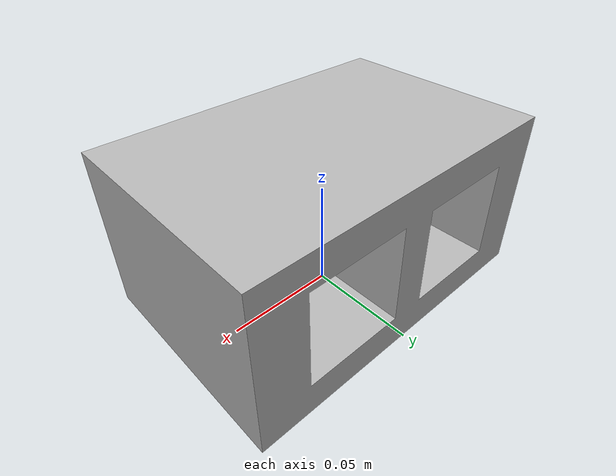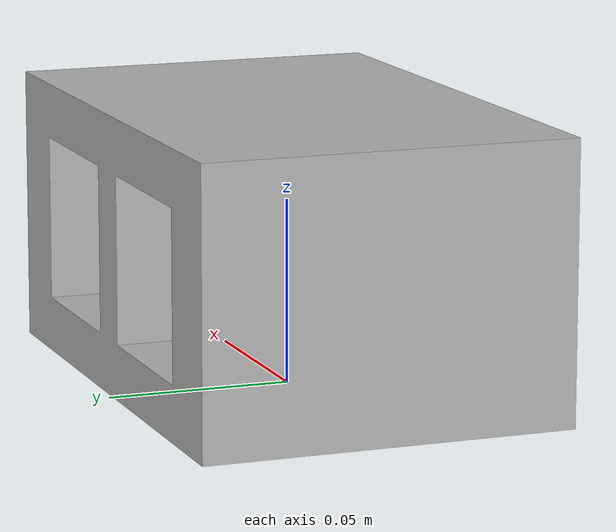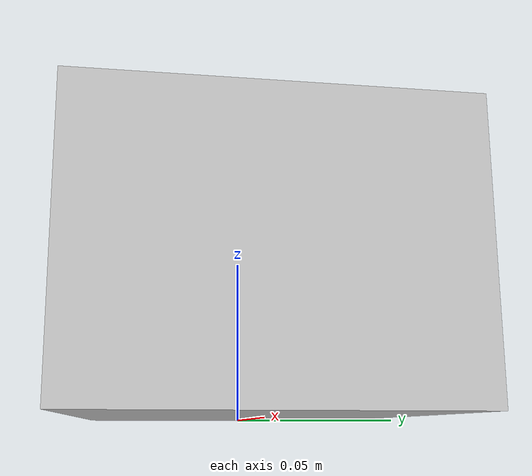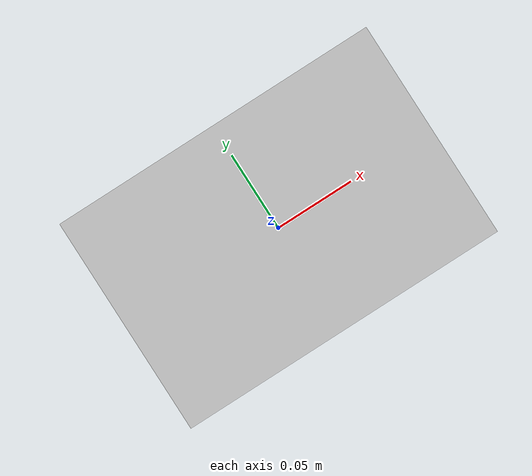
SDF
<?xml version="1.0" ?>
<sdf version="1.4">
  <model name="maskor_ev3_crate3">
    <pose>0 0 0 0 0 0</pose>
    <static>false</static>
    <link name="link">
      <pose>0 0 0.001 0 0 0</pose>
       <inertial>
          <inertia>
            <ixx>1</ixx>
            <ixy>0</ixy>
            <ixz>0</ixz>
            <iyy>1</iyy>
            <iyz>0</iyz>
            <izz>1</izz>
          </inertia>
          <mass>0.02</mass>
        </inertial>
       <visual name="visual">
       <geometry>
         <mesh>
         <uri>model://maskor_ev3_crate3/meshes/ev3_crate3.dae</uri>
           <scale>1 1 1</scale>
         </mesh>
       </geometry>
      </visual>
      <collision name="collision">
        <geometry>
         <mesh>
            <uri>model://maskor_ev3_crate3/meshes/ev3_crate3.dae</uri>
           <scale>1 1 1</scale>
         </mesh>
        </geometry>
      </collision>
    </link>
  </model>
</sdf>
